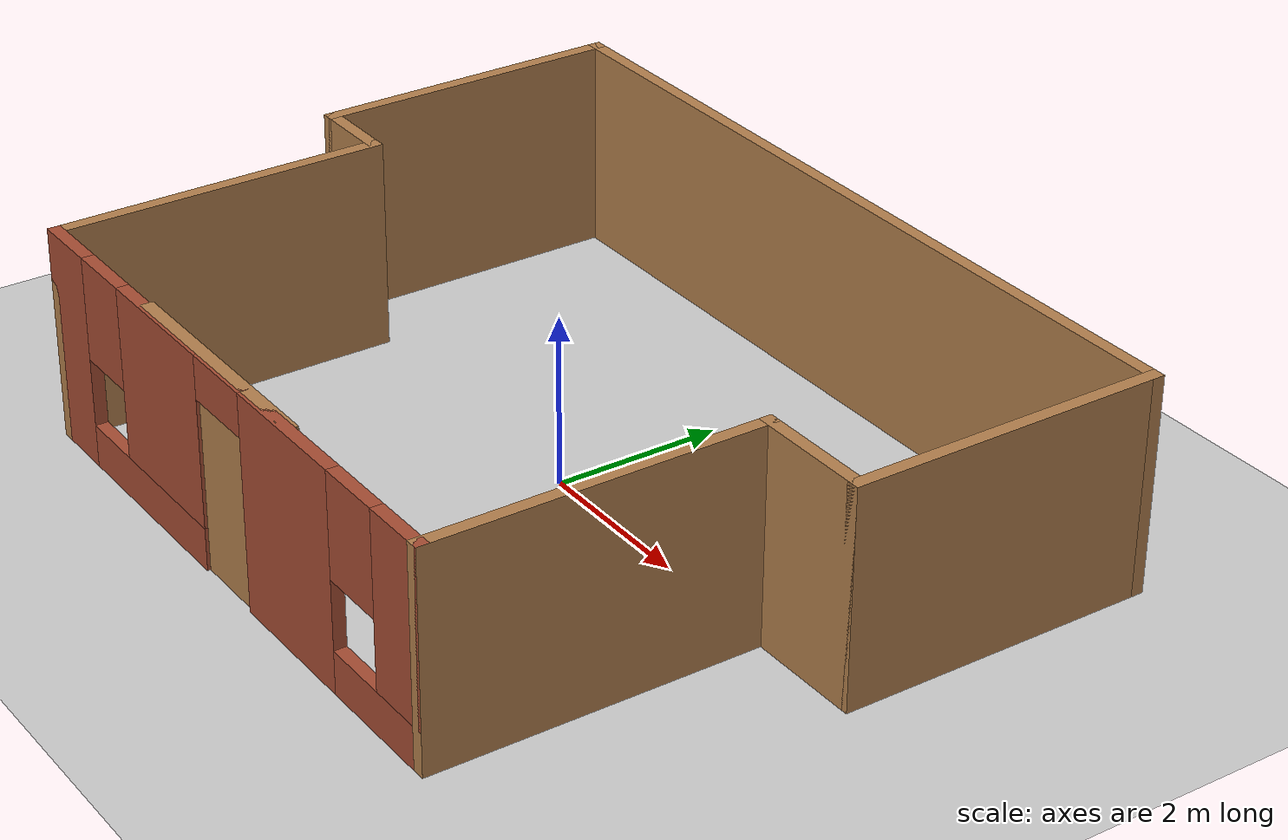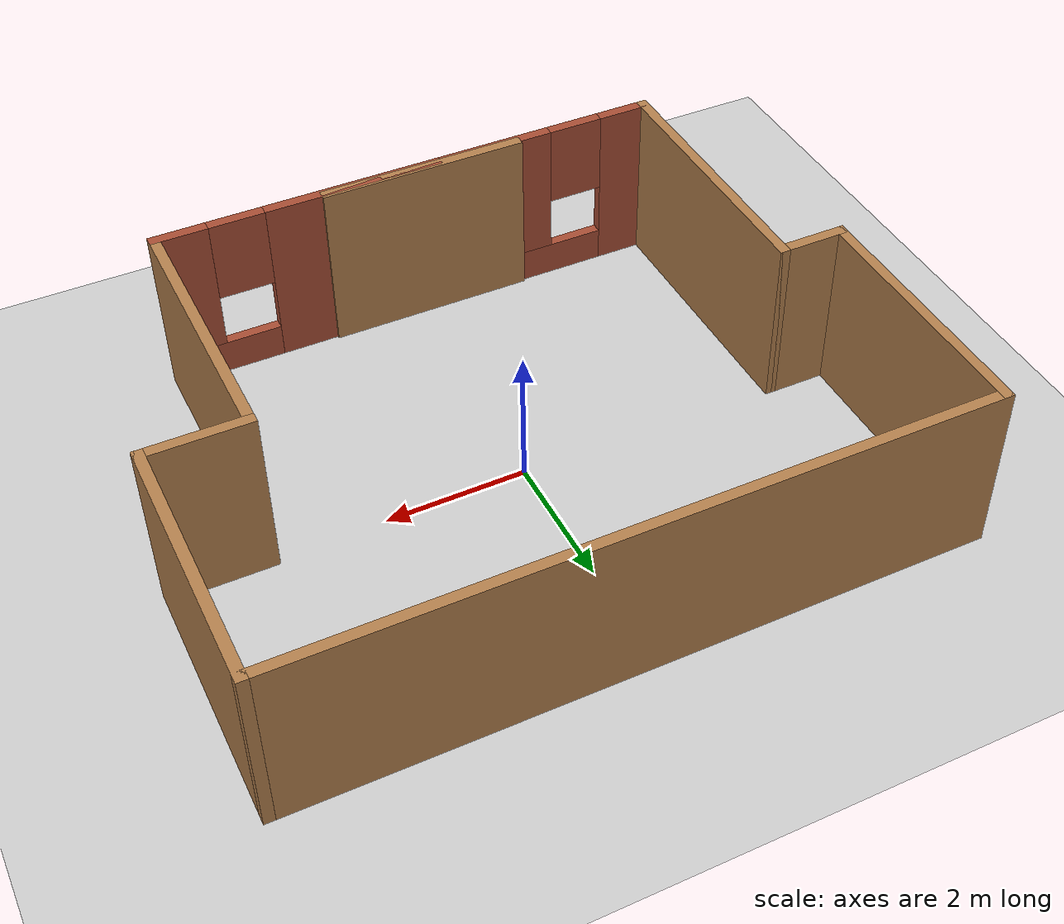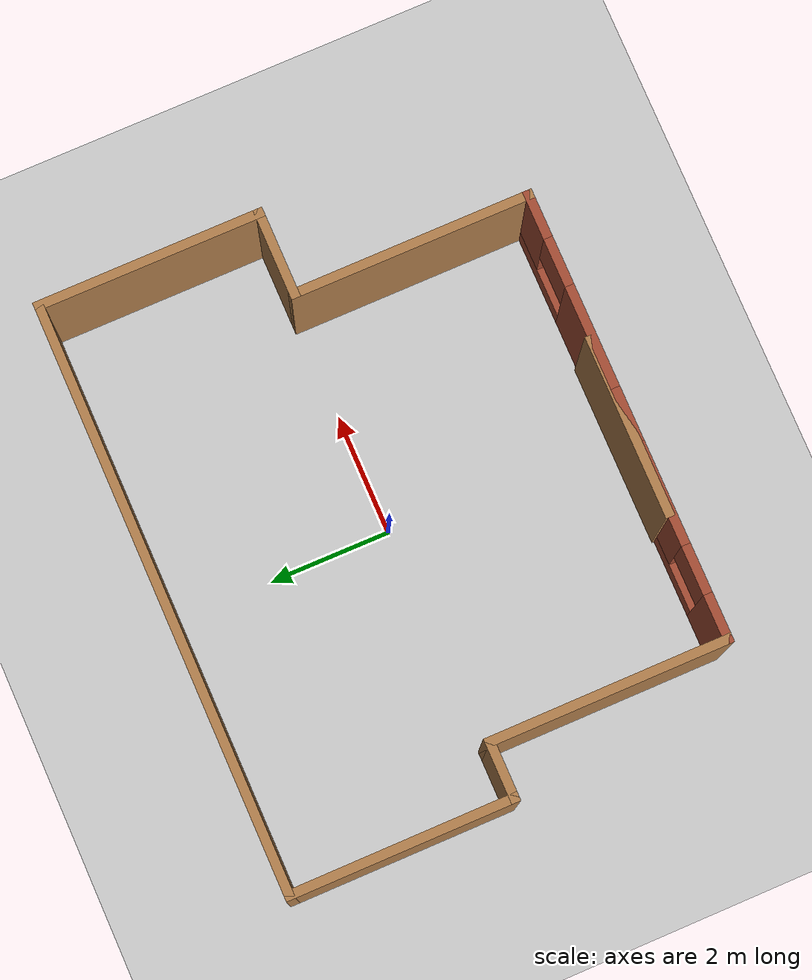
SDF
<sdf version="1.7">
 <world name="default">
  <light name="sun" type="directional">
   <pose>0 0 10 0 -0 0</pose>
   <diffuse>0.8 0.8 0.8 1</diffuse>
   <specular>0.2 0.2 0.2 1</specular>
   <attenuation>
    <range>1000</range>
    <constant>0.9</constant>
    <linear>0.01</linear>
    <quadratic>0.001</quadratic>
   </attenuation>
   <direction>-0.5 0.1 -0.9</direction>
   <spot><inner_angle>0</inner_angle><outer_angle>0</outer_angle><falloff>0</falloff></spot>
  </light>
  <model name="ground_plane">
   <static>1</static>
   <link name="link">
    <collision name="collision">
     <geometry><plane><normal>0 0 1</normal><size>100 100</size></plane></geometry>
     <surface><friction><ode><mu>100</mu><mu2>50</mu2></ode></friction></surface>
    </collision>
    <visual name="visual">
     <cast_shadows>0</cast_shadows>
     <geometry><plane><normal>0 0 1</normal><size>100 100</size></plane></geometry>
     <material>
      <script><uri>file://media/materials/scripts/gazebo.material</uri><name>Gazebo/Grey</name></script>
     </material>
    </visual>
   </link>
  </model>
  <gravity>0 0 -9.8</gravity>
  <magnetic_field>6e-06 2.3e-05 -4.2e-05</magnetic_field>
  <atmosphere type="adiabatic"/>
  <physics type="ode">
   <max_step_size>0.001</max_step_size>
   <real_time_factor>1</real_time_factor>
   <real_time_update_rate>1000</real_time_update_rate>
  </physics>
  <scene><ambient>0.4 0.4 0.4 1</ambient><background>0.7 0.7 0.7 1</background><shadows>1</shadows></scene>
  <audio><device>default</device></audio>
  <spherical_coordinates>
   <surface_model>EARTH_WGS84</surface_model>
   <latitude_deg>0</latitude_deg>
   <longitude_deg>0</longitude_deg>
   <elevation>0</elevation>
   <heading_deg>0</heading_deg>
  </spherical_coordinates>
  <model name="Untitled">
   <pose>0.116266 -0.105403 0 0 -0 0</pose>
   <link name="Wall_10">
    <collision name="Wall_10_Collision">
     <geometry><box><size>4 0.15 2.5</size></box></geometry>
     <pose>0 0 1.25 0 -0 0</pose>
    </collision>
    <visual name="Wall_10_Visual">
     <pose>0 0 1.25 0 -0 0</pose>
     <geometry><box><size>4 0.15 2.5</size></box></geometry>
     <material>
      <script><uri>file://media/materials/scripts/gazebo.material</uri><name>Gazebo/Wood</name></script>
      <ambient>1 1 1 1</ambient>
     </material>
     <meta><layer>0</layer></meta>
    </visual>
    <pose>-3.9 -1.8 0 0 -0 -1.5708</pose>
   </link>
   <link name="Wall_11">
    <pose>-0.225 -3.725 0 0 -0 0</pose>
    <visual name="Wall_11_Visual_0">
     <pose>-3.34407 0 1.25 0 -0 0</pose>
     <geometry><box><size>0.811854 0.15 2.5</size></box></geometry>
     <material>
      <script><uri>file://media/materials/scripts/gazebo.material</uri><name>Gazebo/Bricks</name></script>
      <ambient>1 1 1 1</ambient>
     </material>
     <meta><layer>0</layer></meta>
    </visual>
    <collision name="Wall_11_Collision_0">
     <geometry><box><size>0.811854 0.15 2.5</size></box></geometry>
     <pose>-3.34407 0 1.25 0 -0 0</pose>
    </collision>
    <visual name="Wall_11_Visual_1">
     <pose>1.29969 0 1.25 0 -0 0</pose>
     <geometry><box><size>1.70355 0.15 2.5</size></box></geometry>
     <material>
      <script><uri>file://media/materials/scripts/gazebo.material</uri><name>Gazebo/Bricks</name></script>
      <ambient>1 1 1 1</ambient>
     </material>
     <meta><layer>0</layer></meta>
    </visual>
    <collision name="Wall_11_Collision_1">
     <geometry><box><size>1.70355 0.15 2.5</size></box></geometry>
     <pose>1.29969 0 1.25 0 -0 0</pose>
    </collision>
    <visual name="Wall_11_Visual_2">
     <pose>-1.69512 0 0.25 0 -0 0</pose>
     <geometry><box><size>2.48606 0.15 0.5</size></box></geometry>
     <material>
      <script><uri>file://media/materials/scripts/gazebo.material</uri><name>Gazebo/Bricks</name></script>
      <ambient>1 1 1 1</ambient>
     </material>
     <meta><layer>0</layer></meta>
    </visual>
    <collision name="Wall_11_Collision_2">
     <geometry><box><size>2.48606 0.15 0.5</size></box></geometry>
     <pose>-1.69512 0 0.25 0 -0 0</pose>
    </collision>
    <visual name="Wall_11_Visual_3">
     <pose>2.95073 0 0.25 0 -0 0</pose>
     <geometry><box><size>1.59854 0.15 0.5</size></box></geometry>
     <material>
      <script><uri>file://media/materials/scripts/gazebo.material</uri><name>Gazebo/Bricks</name></script>
      <ambient>1 1 1 1</ambient>
     </material>
     <meta><layer>0</layer></meta>
    </visual>
    <collision name="Wall_11_Collision_3">
     <geometry><box><size>1.59854 0.15 0.5</size></box></geometry>
     <pose>2.95073 0 0.25 0 -0 0</pose>
    </collision>
    <visual name="Wall_11_Visual_4">
     <pose>-1.29512 0 1.5 0 -0 0</pose>
     <geometry><box><size>1.68606 0.15 2</size></box></geometry>
     <material>
      <script><uri>file://media/materials/scripts/gazebo.material</uri><name>Gazebo/Bricks</name></script>
      <ambient>1 1 1 1</ambient>
     </material>
     <meta><layer>0</layer></meta>
    </visual>
    <collision name="Wall_11_Collision_4">
     <geometry><box><size>1.68606 0.15 2</size></box></geometry>
     <pose>-1.29512 0 1.5 0 -0 0</pose>
    </collision>
    <visual name="Wall_11_Visual_5">
     <pose>-1.29512 0 1.5 0 -0 0</pose>
     <geometry><box><size>1.68606 0.15 2</size></box></geometry>
     <material>
      <script><uri>file://media/materials/scripts/gazebo.material</uri><name>Gazebo/Bricks</name></script>
      <ambient>1 1 1 1</ambient>
     </material>
     <meta><layer>0</layer></meta>
    </visual>
    <collision name="Wall_11_Collision_5">
     <geometry><box><size>1.68606 0.15 2</size></box></geometry>
     <pose>-1.29512 0 1.5 0 -0 0</pose>
    </collision>
    <visual name="Wall_11_Visual_6">
     <pose>3.35073 0 1.5 0 -0 0</pose>
     <geometry><box><size>0.798538 0.15 2</size></box></geometry>
     <material>
      <script><uri>file://media/materials/scripts/gazebo.material</uri><name>Gazebo/Bricks</name></script>
      <ambient>1 1 1 1</ambient>
     </material>
     <meta><layer>0</layer></meta>
    </visual>
    <collision name="Wall_11_Collision_6">
     <geometry><box><size>0.798538 0.15 2</size></box></geometry>
     <pose>3.35073 0 1.5 0 -0 0</pose>
    </collision>
    <visual name="Wall_11_Visual_7">
     <pose>-2.53815 0 1.9 0 -0 0</pose>
     <geometry><box><size>0.8 0.15 1.2</size></box></geometry>
     <material>
      <script><uri>file://media/materials/scripts/gazebo.material</uri><name>Gazebo/Bricks</name></script>
      <ambient>1 1 1 1</ambient>
     </material>
     <meta><layer>0</layer></meta>
    </visual>
    <collision name="Wall_11_Collision_7">
     <geometry><box><size>0.8 0.15 1.2</size></box></geometry>
     <pose>-2.53815 0 1.9 0 -0 0</pose>
    </collision>
    <visual name="Wall_11_Visual_8">
     <pose>2.55146 0 1.9 0 -0 0</pose>
     <geometry><box><size>0.8 0.15 1.2</size></box></geometry>
     <material>
      <script><uri>file://media/materials/scripts/gazebo.material</uri><name>Gazebo/Bricks</name></script>
      <ambient>1 1 1 1</ambient>
     </material>
     <meta><layer>0</layer></meta>
    </visual>
    <collision name="Wall_11_Collision_8">
     <geometry><box><size>0.8 0.15 1.2</size></box></geometry>
     <pose>2.55146 0 1.9 0 -0 0</pose>
    </collision>
    <visual name="Wall_11_Visual_9">
     <pose>-0.002087 0 2.25 0 -0 0</pose>
     <geometry><box><size>0.9 0.15 0.5</size></box></geometry>
     <material>
      <script><uri>file://media/materials/scripts/gazebo.material</uri><name>Gazebo/Bricks</name></script>
      <ambient>1 1 1 1</ambient>
     </material>
     <meta><layer>0</layer></meta>
    </visual>
    <collision name="Wall_11_Collision_9">
     <geometry><box><size>0.9 0.15 0.5</size></box></geometry>
     <pose>-0.002087 0 2.25 0 -0 0</pose>
    </collision>
    <visual name="Wall_11_Visual_10">
     <pose>-0.002087 0 2.25 0 -0 0</pose>
     <geometry><box><size>0.9 0.15 0.5</size></box></geometry>
     <material>
      <script><uri>file://media/materials/scripts/gazebo.material</uri><name>Gazebo/Bricks</name></script>
      <ambient>1 1 1 1</ambient>
     </material>
     <meta><layer>0</layer></meta>
    </visual>
    <collision name="Wall_11_Collision_10">
     <geometry><box><size>0.9 0.15 0.5</size></box></geometry>
     <pose>-0.002087 0 2.25 0 -0 0</pose>
    </collision>
   </link>
   <link name="Wall_12">
    <collision name="Wall_12_Collision">
     <geometry><box><size>4 0.15 2.5</size></box></geometry>
     <pose>0 0 1.25 0 -0 0</pose>
    </collision>
    <visual name="Wall_12_Visual">
     <pose>0 0 1.25 0 -0 0</pose>
     <geometry><box><size>4 0.15 2.5</size></box></geometry>
     <material>
      <script><uri>file://media/materials/scripts/gazebo.material</uri><name>Gazebo/Wood</name></script>
      <ambient>1 1 1 1</ambient>
     </material>
     <meta><layer>0</layer></meta>
    </visual>
    <pose>3.45 -1.8 0 0 -0 1.5708</pose>
   </link>
   <link name="Wall_13">
    <collision name="Wall_13_Collision">
     <geometry><box><size>1.5 0.15 2.5</size></box></geometry>
     <pose>0 0 1.25 0 -0 0</pose>
    </collision>
    <visual name="Wall_13_Visual">
     <pose>0 0 1.25 0 -0 0</pose>
     <geometry><box><size>1.5 0.15 2.5</size></box></geometry>
     <material>
      <script><uri>file://media/materials/scripts/gazebo.material</uri><name>Gazebo/Wood</name></script>
      <ambient>1 1 1 1</ambient>
     </material>
     <meta><layer>0</layer></meta>
    </visual>
    <pose>4.125 0.125 0 0 -0 0</pose>
   </link>
   <link name="Wall_14">
    <collision name="Wall_14_Collision">
     <geometry><box><size>3.75 0.15 2.5</size></box></geometry>
     <pose>0 0 1.25 0 -0 0</pose>
    </collision>
    <visual name="Wall_14_Visual">
     <pose>0 0 1.25 0 -0 0</pose>
     <geometry><box><size>3.75 0.15 2.5</size></box></geometry>
     <material>
      <script><uri>file://media/materials/scripts/gazebo.material</uri><name>Gazebo/Wood</name></script>
      <ambient>1 1 1 1</ambient>
     </material>
     <meta><layer>0</layer></meta>
    </visual>
    <pose>4.8 1.925 0 0 -0 1.5708</pose>
   </link>
   <link name="Wall_15">
    <collision name="Wall_15_Collision">
     <geometry><box><size>9.75 0.15 2.5</size></box></geometry>
     <pose>0 0 1.25 0 -0 0</pose>
    </collision>
    <visual name="Wall_15_Visual">
     <pose>0 0 1.25 0 -0 0</pose>
     <geometry><box><size>9.75 0.15 2.5</size></box></geometry>
     <material>
      <script><uri>file://media/materials/scripts/gazebo.material</uri><name>Gazebo/Wood</name></script>
      <ambient>1 1 1 1</ambient>
     </material>
     <meta><layer>0</layer></meta>
    </visual>
    <pose>-0 3.725 0 0 -0 3.14159</pose>
   </link>
   <link name="Wall_16">
    <collision name="Wall_16_Collision">
     <geometry><box><size>3.75 0.15 2.5</size></box></geometry>
     <pose>0 0 1.25 0 -0 0</pose>
    </collision>
    <visual name="Wall_16_Visual">
     <pose>0 0 1.25 0 -0 0</pose>
     <geometry><box><size>3.75 0.15 2.5</size></box></geometry>
     <material>
      <script><uri>file://media/materials/scripts/gazebo.material</uri><name>Gazebo/Wood</name></script>
      <ambient>1 1 1 1</ambient>
     </material>
     <meta><layer>0</layer></meta>
    </visual>
    <pose>-4.8 1.925 0 0 -0 -1.5708</pose>
   </link>
   <link name="Wall_17">
    <collision name="Wall_17_Collision">
     <geometry><box><size>1.05 0.15 2.5</size></box></geometry>
     <pose>0 0 1.25 0 -0 0</pose>
    </collision>
    <visual name="Wall_17_Visual">
     <pose>0 0 1.25 0 -0 0</pose>
     <geometry><box><size>1.05 0.15 2.5</size></box></geometry>
     <material>
      <script><uri>file://media/materials/scripts/gazebo.material</uri><name>Gazebo/Wood</name></script>
      <ambient>1 1 1 1</ambient>
     </material>
     <meta><layer>0</layer></meta>
    </visual>
    <pose>-4.35 0.125 0 0 -0 0</pose>
   </link>
   <static>1</static>
  </model>
  <model name="Untitled_0">
   <pose>-0.277416 -1.93412 0 0 -0 0</pose>
   <link name="Wall_26">
    <collision name="Wall_26_Collision">
     <geometry><box><size>3 0.15 2.5</size></box></geometry>
     <pose>0 0 1.25 0 -0 0</pose>
    </collision>
    <visual name="Wall_26_Visual">
     <pose>0 0 1.25 0 -0 0</pose>
     <geometry><box><size>3 0.15 2.5</size></box></geometry>
     <material>
      <script><uri>file://media/materials/scripts/gazebo.material</uri><name>Gazebo/Wood</name></script>
      <ambient>1 1 1 1</ambient>
     </material>
     <meta><layer>0</layer></meta>
    </visual>
    <pose>-0 -1.85912 0 0 -0 0</pose>
   </link>
   <static>1</static>
  </model>
 </world>
</sdf>
